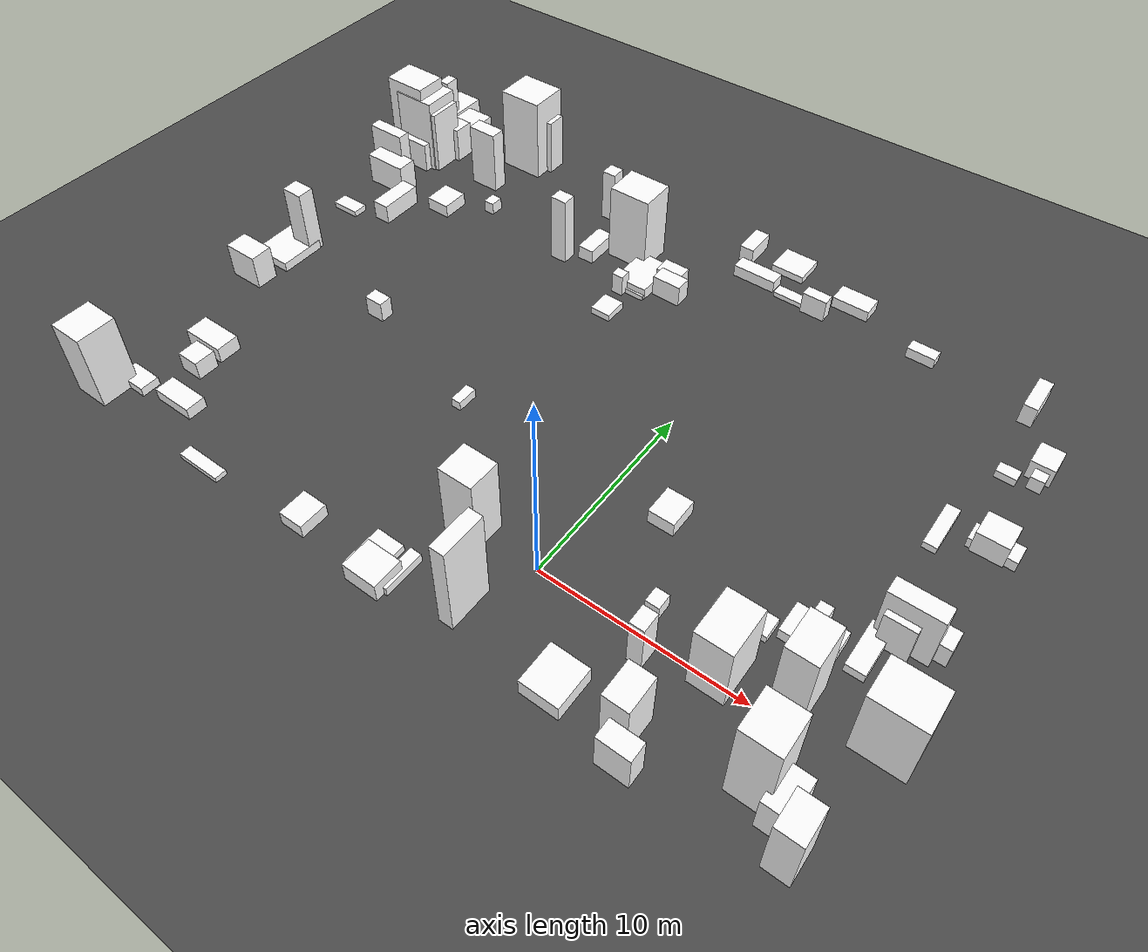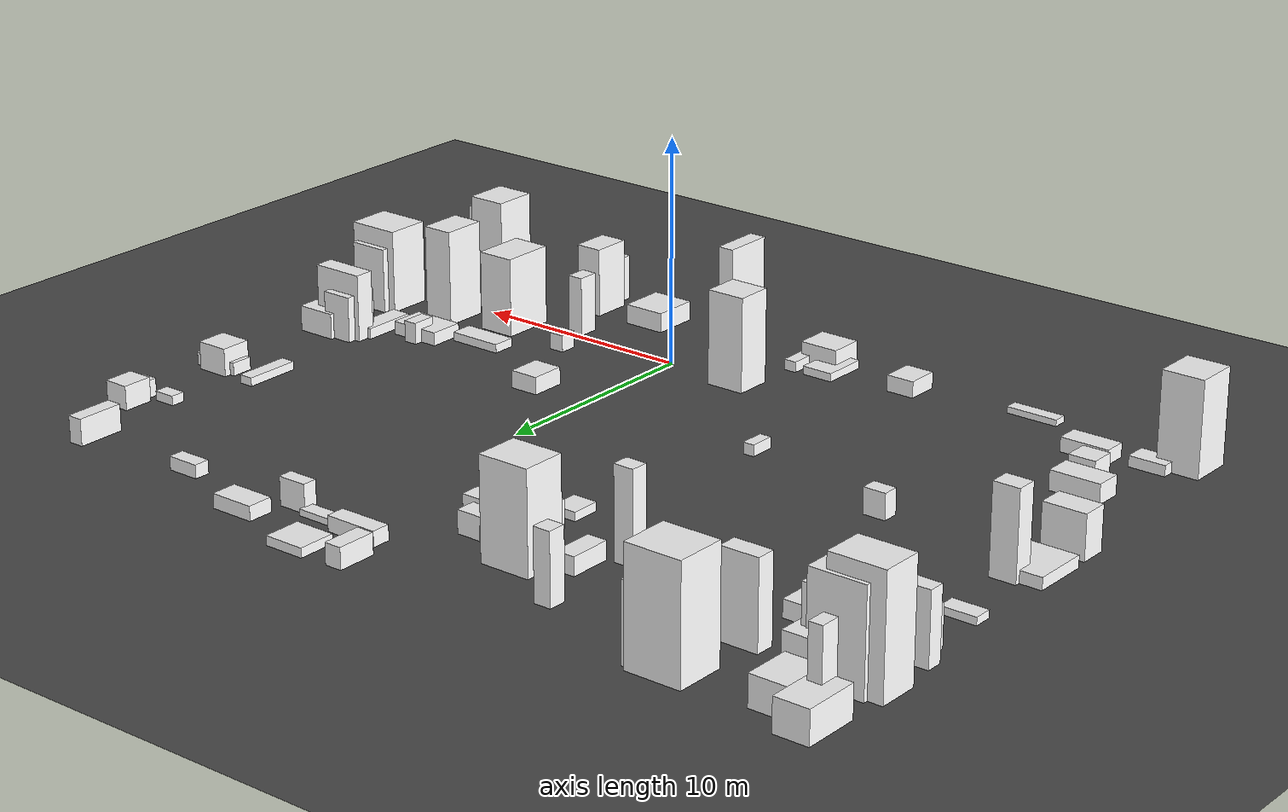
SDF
<sdf version="1.6">
 <world name="mirror_edge_world">
  <model name="ground_plane">
   <static>true</static>
   <link name="link">
    <collision name="collision">
     <geometry><plane><normal>0 0 1</normal><size>100 100</size></plane></geometry>
    </collision>
    <visual name="visual">
     <geometry><plane><normal>0 0 1</normal><size>100 100</size></plane></geometry>
     <material>
      <ambient>0.3 0.3 0.3 1</ambient>
      <diffuse>0.3 0.3 0.3 1</diffuse>
      <specular>0.5 0.5 0.5 1</specular>
      <emissive>0 0 0 1</emissive>
     </material>
    </visual>
   </link>
  </model>
  <model name="block_10_36">
   <static>true</static>
   <link name="link">
    <pose>13.14398396899653 5.932154925168475 1.022013443884161 0 0 0</pose>
    <visual name="visual">
     <geometry><box><size>1.4062274205631344 1.5603947967494347 2.044026887768322</size></box></geometry>
     <material>
      <ambient>1 1 1 1</ambient>
      <diffuse>1 1 1 1</diffuse>
      <specular>0.9 0.9 0.9 1</specular>
      <emissive>0.05 0.05 0.05 1</emissive>
     </material>
    </visual>
   </link>
  </model>
  <model name="block_10_39">
   <static>true</static>
   <link name="link">
    <pose>-23.719673926924457 21.985306734665333 1.770845181758036 0 0 0</pose>
    <visual name="visual">
     <geometry><box><size>0.5934019425355255 0.855660733695859 3.541690363516072</size></box></geometry>
     <material>
      <ambient>1 1 1 1</ambient>
      <diffuse>1 1 1 1</diffuse>
      <specular>0.9 0.9 0.9 1</specular>
      <emissive>0.05 0.05 0.05 1</emissive>
     </material>
    </visual>
   </link>
  </model>
  <model name="block_10_44">
   <static>true</static>
   <link name="link">
    <pose>7.360546333873977 -4.828575610701538 1.0065703546509264 0 0 0</pose>
    <visual name="visual">
     <geometry><box><size>1.5447068966338313 0.9139194485366942 2.0131407093018527</size></box></geometry>
     <material>
      <ambient>1 1 1 1</ambient>
      <diffuse>1 1 1 1</diffuse>
      <specular>0.9 0.9 0.9 1</specular>
      <emissive>0.05 0.05 0.05 1</emissive>
     </material>
    </visual>
   </link>
  </model>
  <model name="block_10_45">
   <static>true</static>
   <link name="link">
    <pose>-15.839575758059079 7.353125209314778 0.5637914186778874 0 0 0</pose>
    <collision name="collision">
     <geometry><box><size>1.017265040462063 0.7210265243921623 1.1275828373557748</size></box></geometry>
    </collision>
    <visual name="visual">
     <geometry><box><size>1.017265040462063 0.7210265243921623 1.1275828373557748</size></box></geometry>
     <material>
      <ambient>1 1 1 1</ambient>
      <diffuse>1 1 1 1</diffuse>
      <specular>0.9 0.9 0.9 1</specular>
      <emissive>0.05 0.05 0.05 1</emissive>
     </material>
    </visual>
   </link>
  </model>
  <model name="block_10_46">
   <static>true</static>
   <link name="link">
    <pose>10.48898502338087 3.9034998790266533 0.2940860554523627 0 0 0</pose>
    <collision name="collision">
     <geometry><box><size>2.323407507187122 1.5603860755770764 0.5881721109047254</size></box></geometry>
    </collision>
    <visual name="visual">
     <geometry><box><size>2.323407507187122 1.5603860755770764 0.5881721109047254</size></box></geometry>
     <material>
      <ambient>1 1 1 1</ambient>
      <diffuse>1 1 1 1</diffuse>
      <specular>0.9 0.9 0.9 1</specular>
      <emissive>0.05 0.05 0.05 1</emissive>
     </material>
    </visual>
   </link>
  </model>
  <model name="block_10_47">
   <static>true</static>
   <link name="link">
    <pose>-5.72112464324708 -3.6082091533548692 0.18246351834590763 0 0 0</pose>
    <collision name="collision">
     <geometry><box><size>1.4403357732990603 2.0277170170143766 0.36492703669181525</size></box></geometry>
    </collision>
    <visual name="visual">
     <geometry><box><size>1.4403357732990603 2.0277170170143766 0.36492703669181525</size></box></geometry>
     <material>
      <ambient>1 1 1 1</ambient>
      <diffuse>1 1 1 1</diffuse>
      <specular>0.9 0.9 0.9 1</specular>
      <emissive>0.05 0.05 0.05 1</emissive>
     </material>
    </visual>
   </link>
  </model>
  <model name="block_10_48">
   <static>true</static>
   <link name="link">
    <pose>0.2810482344472227 20.862907026773684 0.13949705946904145 0 0 0</pose>
    <collision name="collision">
     <geometry><box><size>1.6884487499459087 0.6494085556909421 0.2789941189380829</size></box></geometry>
    </collision>
    <visual name="visual">
     <geometry><box><size>1.6884487499459087 0.6494085556909421 0.2789941189380829</size></box></geometry>
     <material>
      <ambient>1 1 1 1</ambient>
      <diffuse>1 1 1 1</diffuse>
      <specular>0.9 0.9 0.9 1</specular>
      <emissive>0.05 0.05 0.05 1</emissive>
     </material>
    </visual>
   </link>
  </model>
  <model name="block_10_52">
   <static>true</static>
   <link name="link">
    <pose>3.1643194363562124 22.18768458143067 0.3115563000027671 0 0 0</pose>
    <collision name="collision">
     <geometry><box><size>1.9522807097277013 1.1299898943811022 0.6231126000055341</size></box></geometry>
    </collision>
    <visual name="visual">
     <geometry><box><size>1.9522807097277013 1.1299898943811022 0.6231126000055341</size></box></geometry>
     <material>
      <ambient>1 1 1 1</ambient>
      <diffuse>1 1 1 1</diffuse>
      <specular>0.9 0.9 0.9 1</specular>
      <emissive>0.05 0.05 0.05 1</emissive>
     </material>
    </visual>
   </link>
  </model>
  <model name="block_10_53">
   <static>true</static>
   <link name="link">
    <pose>14.690262102213012 1.7146418022751693 1.8657009960301596 0 0 0</pose>
    <visual name="visual">
     <geometry><box><size>2.363625511586188 1.9873620562468064 3.731401992060319</size></box></geometry>
     <material>
      <ambient>1 1 1 1</ambient>
      <diffuse>1 1 1 1</diffuse>
      <specular>0.9 0.9 0.9 1</specular>
      <emissive>0.05 0.05 0.05 1</emissive>
     </material>
    </visual>
   </link>
  </model>
  <model name="block_10_56">
   <static>true</static>
   <link name="link">
    <pose>-11.14343626819747 21.043633217978954 1.5038853410179565 0 0 0</pose>
    <visual name="visual">
     <geometry><box><size>0.7641052566713302 0.7913520050208096 3.007770682035913</size></box></geometry>
     <material>
      <ambient>1 1 1 1</ambient>
      <diffuse>1 1 1 1</diffuse>
      <specular>0.9 0.9 0.9 1</specular>
      <emissive>0.05 0.05 0.05 1</emissive>
     </material>
    </visual>
   </link>
  </model>
  <model name="block_10_59">
   <static>true</static>
   <link name="link">
    <pose>10.390578861977815 4.495327098001437 0.47488278004322965 0 0 0</pose>
    <collision name="collision">
     <geometry><box><size>0.6082894664843825 1.1199350834160051 0.9497655600864593</size></box></geometry>
    </collision>
    <visual name="visual">
     <geometry><box><size>0.6082894664843825 1.1199350834160051 0.9497655600864593</size></box></geometry>
     <material>
      <ambient>1 1 1 1</ambient>
      <diffuse>1 1 1 1</diffuse>
      <specular>0.9 0.9 0.9 1</specular>
      <emissive>0.05 0.05 0.05 1</emissive>
     </material>
    </visual>
   </link>
  </model>
  <model name="block_10_60">
   <static>true</static>
   <link name="link">
    <pose>11.168878389780367 1.3717405584177191 2.137899018583286 0 0 0</pose>
    <visual name="visual">
     <geometry><box><size>1.3998180333235046 1.9829453416426635 4.275798037166572</size></box></geometry>
     <material>
      <ambient>1 1 1 1</ambient>
      <diffuse>1 1 1 1</diffuse>
      <specular>0.9 0.9 0.9 1</specular>
      <emissive>0.05 0.05 0.05 1</emissive>
     </material>
    </visual>
   </link>
  </model>
  <model name="block_10_62">
   <static>true</static>
   <link name="link">
    <pose>-23.130551316403892 18.96393941651243 0.8671967395397819 0 0 0</pose>
    <visual name="visual">
     <geometry><box><size>1.9477650666660105 2.0626600229176226 1.7343934790795639</size></box></geometry>
     <material>
      <ambient>1 1 1 1</ambient>
      <diffuse>1 1 1 1</diffuse>
      <specular>0.9 0.9 0.9 1</specular>
      <emissive>0.05 0.05 0.05 1</emissive>
     </material>
    </visual>
   </link>
  </model>
  <model name="block_10_64">
   <static>true</static>
   <link name="link">
    <pose>3.690911395373785 -3.7301240194693586 0.43594860938139485 0 0 0</pose>
    <collision name="collision">
     <geometry><box><size>1.8978971156321893 2.0483993641014586 0.8718972187627897</size></box></geometry>
    </collision>
    <visual name="visual">
     <geometry><box><size>1.8978971156321893 2.0483993641014586 0.8718972187627897</size></box></geometry>
     <material>
      <ambient>1 1 1 1</ambient>
      <diffuse>1 1 1 1</diffuse>
      <specular>0.9 0.9 0.9 1</specular>
      <emissive>0.05 0.05 0.05 1</emissive>
     </material>
    </visual>
   </link>
  </model>
  <model name="block_10_67">
   <static>true</static>
   <link name="link">
    <pose>-20.722909921975457 0.7607966268274522 0.4299927545267635 0 0 0</pose>
    <collision name="collision">
     <geometry><box><size>2.2739997098499964 1.2126106399910992 0.859985509053527</size></box></geometry>
    </collision>
    <visual name="visual">
     <geometry><box><size>2.2739997098499964 1.2126106399910992 0.859985509053527</size></box></geometry>
     <material>
      <ambient>1 1 1 1</ambient>
      <diffuse>1 1 1 1</diffuse>
      <specular>0.9 0.9 0.9 1</specular>
      <emissive>0.05 0.05 0.05 1</emissive>
     </material>
    </visual>
   </link>
  </model>
  <model name="block_11_0">
   <static>true</static>
   <link name="link">
    <pose>-22.88524268246519 15.932406507634877 0.895745612841071 0 0 0</pose>
    <visual name="visual">
     <geometry><box><size>2.403761875140228 1.1200065324880848 1.791491225682142</size></box></geometry>
     <material>
      <ambient>1 1 1 1</ambient>
      <diffuse>1 1 1 1</diffuse>
      <specular>0.9 0.9 0.9 1</specular>
      <emissive>0.05 0.05 0.05 1</emissive>
     </material>
    </visual>
   </link>
  </model>
  <model name="block_11_2">
   <static>true</static>
   <link name="link">
    <pose>-7.141831109437067 16.117844287125045 0.6060853999581335 0 0 0</pose>
    <visual name="visual">
     <geometry><box><size>0.6206438179427527 0.5793317187404519 1.212170799916267</size></box></geometry>
     <material>
      <ambient>1 1 1 1</ambient>
      <diffuse>1 1 1 1</diffuse>
      <specular>0.9 0.9 0.9 1</specular>
      <emissive>0.05 0.05 0.05 1</emissive>
     </material>
    </visual>
   </link>
  </model>
  <model name="block_11_3">
   <static>true</static>
   <link name="link">
    <pose>14.426582454925885 12.21971588629421 0.6189555330078333 0 0 0</pose>
    <collision name="collision">
     <geometry><box><size>1.4656414743136656 1.3748484489824404 1.2379110660156667</size></box></geometry>
    </collision>
    <visual name="visual">
     <geometry><box><size>1.4656414743136656 1.3748484489824404 1.2379110660156667</size></box></geometry>
     <material>
      <ambient>1 1 1 1</ambient>
      <diffuse>1 1 1 1</diffuse>
      <specular>0.9 0.9 0.9 1</specular>
      <emissive>0.05 0.05 0.05 1</emissive>
     </material>
    </visual>
   </link>
  </model>
  <model name="block_11_4">
   <static>true</static>
   <link name="link">
    <pose>-6.64063393572258 17.485346357170314 0.3231620537967594 0 0 0</pose>
    <collision name="collision">
     <geometry><box><size>1.8104963373769178 2.428725796269382 0.6463241075935188</size></box></geometry>
    </collision>
    <visual name="visual">
     <geometry><box><size>1.8104963373769178 2.428725796269382 0.6463241075935188</size></box></geometry>
     <material>
      <ambient>1 1 1 1</ambient>
      <diffuse>1 1 1 1</diffuse>
      <specular>0.9 0.9 0.9 1</specular>
      <emissive>0.05 0.05 0.05 1</emissive>
     </material>
    </visual>
   </link>
  </model>
  <model name="block_11_9">
   <static>true</static>
   <link name="link">
    <pose>-0.73911984909628 23.072457922440748 0.20239345267973735 0 0 0</pose>
    <collision name="collision">
     <geometry><box><size>1.79166487440829 1.643205542984609 0.4047869053594747</size></box></geometry>
    </collision>
    <visual name="visual">
     <geometry><box><size>1.79166487440829 1.643205542984609 0.4047869053594747</size></box></geometry>
     <material>
      <ambient>1 1 1 1</ambient>
      <diffuse>1 1 1 1</diffuse>
      <specular>0.9 0.9 0.9 1</specular>
      <emissive>0.05 0.05 0.05 1</emissive>
     </material>
    </visual>
   </link>
  </model>
  <model name="block_11_13">
   <static>true</static>
   <link name="link">
    <pose>-20.13137412236901 -0.6475013786940114 0.5105938764906168 0 0 0</pose>
    <collision name="collision">
     <geometry><box><size>1.2166819569290062 1.1187875733813217 1.0211877529812337</size></box></geometry>
    </collision>
    <visual name="visual">
     <geometry><box><size>1.2166819569290062 1.1187875733813217 1.0211877529812337</size></box></geometry>
     <material>
      <ambient>1 1 1 1</ambient>
      <diffuse>1 1 1 1</diffuse>
      <specular>0.9 0.9 0.9 1</specular>
      <emissive>0.05 0.05 0.05 1</emissive>
     </material>
    </visual>
   </link>
  </model>
  <model name="block_11_14">
   <static>true</static>
   <link name="link">
    <pose>-23.96427520771062 22.806162378564505 0.6937701049093288 0 0 0</pose>
    <visual name="visual">
     <geometry><box><size>1.514727674243278 2.4354961125367645 1.3875402098186576</size></box></geometry>
     <material>
      <ambient>1 1 1 1</ambient>
      <diffuse>1 1 1 1</diffuse>
      <specular>0.9 0.9 0.9 1</specular>
      <emissive>0.05 0.05 0.05 1</emissive>
     </material>
    </visual>
   </link>
  </model>
  <model name="block_11_17">
   <static>true</static>
   <link name="link">
    <pose>-22.666091150015724 -4.0511061864706805 2.0823466095999565 0 0 0</pose>
    <visual name="visual">
     <geometry><box><size>1.8722027414350537 1.9752301778030144 4.164693219199913</size></box></geometry>
     <material>
      <ambient>1 1 1 1</ambient>
      <diffuse>1 1 1 1</diffuse>
      <specular>0.9 0.9 0.9 1</specular>
      <emissive>0.05 0.05 0.05 1</emissive>
     </material>
    </visual>
   </link>
  </model>
  <model name="block_11_19">
   <static>true</static>
   <link name="link">
    <pose>-8.185757298008028 19.139252008429082 2.1701992765522666 0 0 0</pose>
    <visual name="visual">
     <geometry><box><size>2.27429194293656 1.9155800381555814 4.340398553104533</size></box></geometry>
     <material>
      <ambient>1 1 1 1</ambient>
      <diffuse>1 1 1 1</diffuse>
      <specular>0.9 0.9 0.9 1</specular>
      <emissive>0.05 0.05 0.05 1</emissive>
     </material>
    </visual>
   </link>
  </model>
  <model name="block_11_22">
   <static>true</static>
   <link name="link">
    <pose>12.475341262061825 4.601288098594913 0.2384032103170613 0 0 0</pose>
    <collision name="collision">
     <geometry><box><size>0.8880955289223214 2.4301790528074303 0.4768064206341226</size></box></geometry>
    </collision>
    <visual name="visual">
     <geometry><box><size>0.8880955289223214 2.4301790528074303 0.4768064206341226</size></box></geometry>
     <material>
      <ambient>1 1 1 1</ambient>
      <diffuse>1 1 1 1</diffuse>
      <specular>0.9 0.9 0.9 1</specular>
      <emissive>0.05 0.05 0.05 1</emissive>
     </material>
    </visual>
   </link>
  </model>
  <model name="block_11_23">
   <static>true</static>
   <link name="link">
    <pose>14.658263200183804 17.423861104060325 0.5300622002242055 0 0 0</pose>
    <collision name="collision">
     <geometry><box><size>1.121836637344087 1.339192898808405 1.060124400448411</size></box></geometry>
    </collision>
    <visual name="visual">
     <geometry><box><size>1.121836637344087 1.339192898808405 1.060124400448411</size></box></geometry>
     <material>
      <ambient>1 1 1 1</ambient>
      <diffuse>1 1 1 1</diffuse>
      <specular>0.9 0.9 0.9 1</specular>
      <emissive>0.05 0.05 0.05 1</emissive>
     </material>
    </visual>
   </link>
  </model>
  <model name="block_11_25">
   <static>true</static>
   <link name="link">
    <pose>4.877644653521944 1.4041627576769953 0.37300122545366876 0 0 0</pose>
    <collision name="collision">
     <geometry><box><size>0.6738179490028751 0.7902784643743668 0.7460024509073375</size></box></geometry>
    </collision>
    <visual name="visual">
     <geometry><box><size>0.6738179490028751 0.7902784643743668 0.7460024509073375</size></box></geometry>
     <material>
      <ambient>1 1 1 1</ambient>
      <diffuse>1 1 1 1</diffuse>
      <specular>0.9 0.9 0.9 1</specular>
      <emissive>0.05 0.05 0.05 1</emissive>
     </material>
    </visual>
   </link>
  </model>
  <model name="block_11_27">
   <static>true</static>
   <link name="link">
    <pose>-21.603167708245632 -3.051509174233982 0.23822872738962375 0 0 0</pose>
    <collision name="collision">
     <geometry><box><size>1.6390352961548613 0.985571215870674 0.4764574547792475</size></box></geometry>
    </collision>
    <visual name="visual">
     <geometry><box><size>1.6390352961548613 0.985571215870674 0.4764574547792475</size></box></geometry>
     <material>
      <ambient>1 1 1 1</ambient>
      <diffuse>1 1 1 1</diffuse>
      <specular>0.9 0.9 0.9 1</specular>
      <emissive>0.05 0.05 0.05 1</emissive>
     </material>
    </visual>
   </link>
  </model>
  <model name="block_11_30">
   <static>true</static>
   <link name="link">
    <pose>14.731894822202293 2.303005918449771 1.4588367961730682 0 0 0</pose>
    <visual name="visual">
     <geometry><box><size>1.7769494114376576 1.396564480820891 2.9176735923461363</size></box></geometry>
     <material>
      <ambient>1 1 1 1</ambient>
      <diffuse>1 1 1 1</diffuse>
      <specular>0.9 0.9 0.9 1</specular>
      <emissive>0.05 0.05 0.05 1</emissive>
     </material>
    </visual>
   </link>
  </model>
  <model name="block_11_33">
   <static>true</static>
   <link name="link">
    <pose>-23.54383104812269 16.696705798025278 1.5132464822302278 0 0 0</pose>
    <visual name="visual">
     <geometry><box><size>2.182977431988924 0.6978457244431107 3.0264929644604557</size></box></geometry>
     <material>
      <ambient>1 1 1 1</ambient>
      <diffuse>1 1 1 1</diffuse>
      <specular>0.9 0.9 0.9 1</specular>
      <emissive>0.05 0.05 0.05 1</emissive>
     </material>
    </visual>
   </link>
  </model>
  <model name="block_11_38">
   <static>true</static>
   <link name="link">
    <pose>-23.08926548702857 19.354109070942947 2.1664165106262963 0 0 0</pose>
    <visual name="visual">
     <geometry><box><size>2.4252941860799098 2.036594770720454 4.3328330212525925</size></box></geometry>
     <material>
      <ambient>1 1 1 1</ambient>
      <diffuse>1 1 1 1</diffuse>
      <specular>0.9 0.9 0.9 1</specular>
      <emissive>0.05 0.05 0.05 1</emissive>
     </material>
    </visual>
   </link>
  </model>
  <model name="block_11_41">
   <static>true</static>
   <link name="link">
    <pose>-22.134422205460524 19.35649535047142 1.836431570803652 0 0 0</pose>
    <visual name="visual">
     <geometry><box><size>1.0229245878920994 1.900424543935949 3.672863141607304</size></box></geometry>
     <material>
      <ambient>1 1 1 1</ambient>
      <diffuse>1 1 1 1</diffuse>
      <specular>0.9 0.9 0.9 1</specular>
      <emissive>0.05 0.05 0.05 1</emissive>
     </material>
    </visual>
   </link>
  </model>
  <model name="block_11_44">
   <static>true</static>
   <link name="link">
    <pose>13.508310498981366 16.22738005906973 0.20850270008440303 0 0 0</pose>
    <collision name="collision">
     <geometry><box><size>0.9655844731512682 0.6307362469491182 0.41700540016880605</size></box></geometry>
    </collision>
    <visual name="visual">
     <geometry><box><size>0.9655844731512682 0.6307362469491182 0.41700540016880605</size></box></geometry>
     <material>
      <ambient>1 1 1 1</ambient>
      <diffuse>1 1 1 1</diffuse>
      <specular>0.9 0.9 0.9 1</specular>
      <emissive>0.05 0.05 0.05 1</emissive>
     </material>
    </visual>
   </link>
  </model>
  <model name="block_11_46">
   <static>true</static>
   <link name="link">
    <pose>-6.489548633455442 17.08269936182798 0.13720731698665073 0 0 0</pose>
    <collision name="collision">
     <geometry><box><size>1.39521695156091 1.8814704069005284 0.27441463397330146</size></box></geometry>
    </collision>
    <visual name="visual">
     <geometry><box><size>1.39521695156091 1.8814704069005284 0.27441463397330146</size></box></geometry>
     <material>
      <ambient>1 1 1 1</ambient>
      <diffuse>1 1 1 1</diffuse>
      <specular>0.9 0.9 0.9 1</specular>
      <emissive>0.05 0.05 0.05 1</emissive>
     </material>
    </visual>
   </link>
  </model>
  <model name="block_11_47">
   <static>true</static>
   <link name="link">
    <pose>7.902257804576092 3.1589569032782263 0.19383607003008596 0 0 0</pose>
    <collision name="collision">
     <geometry><box><size>2.448371442313409 1.0382628543442094 0.3876721400601719</size></box></geometry>
    </collision>
    <visual name="visual">
     <geometry><box><size>2.448371442313409 1.0382628543442094 0.3876721400601719</size></box></geometry>
     <material>
      <ambient>1 1 1 1</ambient>
      <diffuse>1 1 1 1</diffuse>
      <specular>0.9 0.9 0.9 1</specular>
      <emissive>0.05 0.05 0.05 1</emissive>
     </material>
    </visual>
   </link>
  </model>
  <model name="block_11_48">
   <static>true</static>
   <link name="link">
    <pose>-5.294820061120976 18.183737514682807 0.49411337037019637 0 0 0</pose>
    <collision name="collision">
     <geometry><box><size>1.3325880567881294 0.9717154019499692 0.9882267407403927</size></box></geometry>
    </collision>
    <visual name="visual">
     <geometry><box><size>1.3325880567881294 0.9717154019499692 0.9882267407403927</size></box></geometry>
     <material>
      <ambient>1 1 1 1</ambient>
      <diffuse>1 1 1 1</diffuse>
      <specular>0.9 0.9 0.9 1</specular>
      <emissive>0.05 0.05 0.05 1</emissive>
     </material>
    </visual>
   </link>
  </model>
  <model name="block_11_49">
   <static>true</static>
   <link name="link">
    <pose>-4.358609397390822 -3.589603649538404 0.23353823405959245 0 0 0</pose>
    <collision name="collision">
     <geometry><box><size>0.5732034479825519 2.1038873562565668 0.4670764681191849</size></box></geometry>
    </collision>
    <visual name="visual">
     <geometry><box><size>0.5732034479825519 2.1038873562565668 0.4670764681191849</size></box></geometry>
     <material>
      <ambient>1 1 1 1</ambient>
      <diffuse>1 1 1 1</diffuse>
      <specular>0.9 0.9 0.9 1</specular>
      <emissive>0.05 0.05 0.05 1</emissive>
     </material>
    </visual>
   </link>
  </model>
  <model name="block_11_50">
   <static>true</static>
   <link name="link">
    <pose>14.239186526412972 6.37612262854022 0.5702077448445912 0 0 0</pose>
    <collision name="collision">
     <geometry><box><size>1.7892691731105912 1.0301128810286582 1.1404154896891825</size></box></geometry>
    </collision>
    <visual name="visual">
     <geometry><box><size>1.7892691731105912 1.0301128810286582 1.1404154896891825</size></box></geometry>
     <material>
      <ambient>1 1 1 1</ambient>
      <diffuse>1 1 1 1</diffuse>
      <specular>0.9 0.9 0.9 1</specular>
      <emissive>0.05 0.05 0.05 1</emissive>
     </material>
    </visual>
   </link>
  </model>
  <model name="block_11_51">
   <static>true</static>
   <link name="link">
    <pose>-23.21556603035931 12.704552088255664 0.16687852035683381 0 0 0</pose>
    <collision name="collision">
     <geometry><box><size>1.5602519765836145 0.8042015313872881 0.33375704071366763</size></box></geometry>
    </collision>
    <visual name="visual">
     <geometry><box><size>1.5602519765836145 0.8042015313872881 0.33375704071366763</size></box></geometry>
     <material>
      <ambient>1 1 1 1</ambient>
      <diffuse>1 1 1 1</diffuse>
      <specular>0.9 0.9 0.9 1</specular>
      <emissive>0.05 0.05 0.05 1</emissive>
     </material>
    </visual>
   </link>
  </model>
  <model name="block_11_56">
   <static>true</static>
   <link name="link">
    <pose>-1.3231170514820114 -3.085655207010039 2.479503654834387 0 0 0</pose>
    <visual name="visual">
     <geometry><box><size>0.7241367336137603 2.243104825586128 4.959007309668774</size></box></geometry>
     <material>
      <ambient>1 1 1 1</ambient>
      <diffuse>1 1 1 1</diffuse>
      <specular>0.9 0.9 0.9 1</specular>
      <emissive>0.05 0.05 0.05 1</emissive>
     </material>
    </visual>
   </link>
  </model>
  <model name="block_11_57">
   <static>true</static>
   <link name="link">
    <pose>-3.44936612478482 -0.0188264304780823 2.091180691952593 0 0 0</pose>
    <visual name="visual">
     <geometry><box><size>1.7442946952088474 1.6496933931218067 4.182361383905186</size></box></geometry>
     <material>
      <ambient>1 1 1 1</ambient>
      <diffuse>1 1 1 1</diffuse>
      <specular>0.9 0.9 0.9 1</specular>
      <emissive>0.05 0.05 0.05 1</emissive>
     </material>
    </visual>
   </link>
  </model>
  <model name="block_11_59">
   <static>true</static>
   <link name="link">
    <pose>12.848022647858407 -2.8647549276055893 0.9703083221773829 0 0 0</pose>
    <visual name="visual">
     <geometry><box><size>1.2002439417478414 1.8361789149943173 1.9406166443547659</size></box></geometry>
     <material>
      <ambient>1 1 1 1</ambient>
      <diffuse>1 1 1 1</diffuse>
      <specular>0.9 0.9 0.9 1</specular>
      <emissive>0.05 0.05 0.05 1</emissive>
     </material>
    </visual>
   </link>
  </model>
  <model name="block_11_60">
   <static>true</static>
   <link name="link">
    <pose>14.556641982788946 12.126378412668117 0.28480849390018886 0 0 0</pose>
    <collision name="collision">
     <geometry><box><size>2.159238114983294 0.9792030921480808 0.5696169878003777</size></box></geometry>
    </collision>
    <visual name="visual">
     <geometry><box><size>2.159238114983294 0.9792030921480808 0.5696169878003777</size></box></geometry>
     <material>
      <ambient>1 1 1 1</ambient>
      <diffuse>1 1 1 1</diffuse>
      <specular>0.9 0.9 0.9 1</specular>
      <emissive>0.05 0.05 0.05 1</emissive>
     </material>
    </visual>
   </link>
  </model>
  <model name="block_11_61">
   <static>true</static>
   <link name="link">
    <pose>-23.23926830315827 18.940315072578276 0.9491579192005195 0 0 0</pose>
    <visual name="visual">
     <geometry><box><size>0.6600693032135252 0.6656675419594849 1.898315838401039</size></box></geometry>
     <material>
      <ambient>1 1 1 1</ambient>
      <diffuse>1 1 1 1</diffuse>
      <specular>0.9 0.9 0.9 1</specular>
      <emissive>0.05 0.05 0.05 1</emissive>
     </material>
    </visual>
   </link>
  </model>
  <model name="block_11_67">
   <static>true</static>
   <link name="link">
    <pose>-16.941147871422157 22.763019557438135 1.635095927948267 0 0 0</pose>
    <visual name="visual">
     <geometry><box><size>1.3201072010340167 1.0805460718936393 3.270191855896534</size></box></geometry>
     <material>
      <ambient>1 1 1 1</ambient>
      <diffuse>1 1 1 1</diffuse>
      <specular>0.9 0.9 0.9 1</specular>
      <emissive>0.05 0.05 0.05 1</emissive>
     </material>
    </visual>
   </link>
  </model>
  <model name="block_12_2">
   <static>true</static>
   <link name="link">
    <pose>-6.785640454890078 14.465373223440547 0.1956483328937132 0 0 0</pose>
    <collision name="collision">
     <geometry><box><size>1.0939652862319087 1.255961734825119 0.3912966657874264</size></box></geometry>
    </collision>
    <visual name="visual">
     <geometry><box><size>1.0939652862319087 1.255961734825119 0.3912966657874264</size></box></geometry>
     <material>
      <ambient>1 1 1 1</ambient>
      <diffuse>1 1 1 1</diffuse>
      <specular>0.9 0.9 0.9 1</specular>
      <emissive>0.05 0.05 0.05 1</emissive>
     </material>
    </visual>
   </link>
  </model>
  <model name="block_12_4">
   <static>true</static>
   <link name="link">
    <pose>-16.73870093632295 17.45992179880123 0.3451156235245346 0 0 0</pose>
    <collision name="collision">
     <geometry><box><size>0.5905843772608965 0.703885868639978 0.6902312470490692</size></box></geometry>
    </collision>
    <visual name="visual">
     <geometry><box><size>0.5905843772608965 0.703885868639978 0.6902312470490692</size></box></geometry>
     <material>
      <ambient>1 1 1 1</ambient>
      <diffuse>1 1 1 1</diffuse>
      <specular>0.9 0.9 0.9 1</specular>
      <emissive>0.05 0.05 0.05 1</emissive>
     </material>
    </visual>
   </link>
  </model>
  <model name="block_12_7">
   <static>true</static>
   <link name="link">
    <pose>14.718911534042384 16.71457262029195 0.38057702414226896 0 0 0</pose>
    <collision name="collision">
     <geometry><box><size>0.6451803685658148 1.1166020638786258 0.7611540482845379</size></box></geometry>
    </collision>
    <visual name="visual">
     <geometry><box><size>0.6451803685658148 1.1166020638786258 0.7611540482845379</size></box></geometry>
     <material>
      <ambient>1 1 1 1</ambient>
      <diffuse>1 1 1 1</diffuse>
      <specular>0.9 0.9 0.9 1</specular>
      <emissive>0.05 0.05 0.05 1</emissive>
     </material>
    </visual>
   </link>
  </model>
  <model name="block_12_12">
   <static>true</static>
   <link name="link">
    <pose>-8.522265221409294 5.307035293339589 0.2492417485561701 0 0 0</pose>
    <collision name="collision">
     <geometry><box><size>0.5175760122162731 1.1026015877520146 0.4984834971123402</size></box></geometry>
    </collision>
    <visual name="visual">
     <geometry><box><size>0.5175760122162731 1.1026015877520146 0.4984834971123402</size></box></geometry>
     <material>
      <ambient>1 1 1 1</ambient>
      <diffuse>1 1 1 1</diffuse>
      <specular>0.9 0.9 0.9 1</specular>
      <emissive>0.05 0.05 0.05 1</emissive>
     </material>
    </visual>
   </link>
  </model>
  <model name="block_12_13">
   <static>true</static>
   <link name="link">
    <pose>-17.796304714722098 22.441356144325027 2.4057661551646254 0 0 0</pose>
    <visual name="visual">
     <geometry><box><size>2.463802354964498 2.1714828183406154 4.811532310329251</size></box></geometry>
     <material>
      <ambient>1 1 1 1</ambient>
      <diffuse>1 1 1 1</diffuse>
      <specular>0.9 0.9 0.9 1</specular>
      <emissive>0.05 0.05 0.05 1</emissive>
     </material>
    </visual>
   </link>
  </model>
  <model name="block_12_15">
   <static>true</static>
   <link name="link">
    <pose>13.69936316000804 -4.020067729006074 1.646823071887743 0 0 0</pose>
    <visual name="visual">
     <geometry><box><size>1.1659492938746456 1.6415476835354692 3.293646143775486</size></box></geometry>
     <material>
      <ambient>1 1 1 1</ambient>
      <diffuse>1 1 1 1</diffuse>
      <specular>0.9 0.9 0.9 1</specular>
      <emissive>0.05 0.05 0.05 1</emissive>
     </material>
    </visual>
   </link>
  </model>
  <model name="block_12_24">
   <static>true</static>
   <link name="link">
    <pose>-9.492633538292598 -3.950282101216307 0.3617559780393137 0 0 0</pose>
    <collision name="collision">
     <geometry><box><size>1.2891153301655254 1.4593457326800519 0.7235119560786274</size></box></geometry>
    </collision>
    <visual name="visual">
     <geometry><box><size>1.2891153301655254 1.4593457326800519 0.7235119560786274</size></box></geometry>
     <material>
      <ambient>1 1 1 1</ambient>
      <diffuse>1 1 1 1</diffuse>
      <specular>0.9 0.9 0.9 1</specular>
      <emissive>0.05 0.05 0.05 1</emissive>
     </material>
    </visual>
   </link>
  </model>
  <model name="block_12_26">
   <static>true</static>
   <link name="link">
    <pose>12.98610027050912 20.741489018411166 0.5795704846359343 0 0 0</pose>
    <collision name="collision">
     <geometry><box><size>0.6745315845256041 2.098544615545205 1.1591409692718686</size></box></geometry>
    </collision>
    <visual name="visual">
     <geometry><box><size>0.6745315845256041 2.098544615545205 1.1591409692718686</size></box></geometry>
     <material>
      <ambient>1 1 1 1</ambient>
      <diffuse>1 1 1 1</diffuse>
      <specular>0.9 0.9 0.9 1</specular>
      <emissive>0.05 0.05 0.05 1</emissive>
     </material>
    </visual>
   </link>
  </model>
  <model name="block_12_27">
   <static>true</static>
   <link name="link">
    <pose>-9.995745516662446 17.92087277389219 0.3961539183877817 0 0 0</pose>
    <collision name="collision">
     <geometry><box><size>0.887068157393442 1.8594253615209628 0.7923078367755634</size></box></geometry>
    </collision>
    <visual name="visual">
     <geometry><box><size>0.887068157393442 1.8594253615209628 0.7923078367755634</size></box></geometry>
     <material>
      <ambient>1 1 1 1</ambient>
      <diffuse>1 1 1 1</diffuse>
      <specular>0.9 0.9 0.9 1</specular>
      <emissive>0.05 0.05 0.05 1</emissive>
     </material>
    </visual>
   </link>
  </model>
  <model name="block_12_28">
   <static>true</static>
   <link name="link">
    <pose>2.8598247388796345 5.486729575407584 0.38495539950648683 0 0 0</pose>
    <collision name="collision">
     <geometry><box><size>1.3045147380543454 1.547627153284238 0.7699107990129737</size></box></geometry>
    </collision>
    <visual name="visual">
     <geometry><box><size>1.3045147380543454 1.547627153284238 0.7699107990129737</size></box></geometry>
     <material>
      <ambient>1 1 1 1</ambient>
      <diffuse>1 1 1 1</diffuse>
      <specular>0.9 0.9 0.9 1</specular>
      <emissive>0.05 0.05 0.05 1</emissive>
     </material>
    </visual>
   </link>
  </model>
  <model name="block_12_37">
   <static>true</static>
   <link name="link">
    <pose>-11.20906511263454 16.582376772398383 1.9582702878355727 0 0 0</pose>
    <visual name="visual">
     <geometry><box><size>0.9035594601245509 0.7557321209991261 3.9165405756711453</size></box></geometry>
     <material>
      <ambient>1 1 1 1</ambient>
      <diffuse>1 1 1 1</diffuse>
      <specular>0.9 0.9 0.9 1</specular>
      <emissive>0.05 0.05 0.05 1</emissive>
     </material>
    </visual>
   </link>
  </model>
  <model name="block_12_38">
   <static>true</static>
   <link name="link">
    <pose>-22.682537964417296 8.984202138624436 1.8952229868813362 0 0 0</pose>
    <visual name="visual">
     <geometry><box><size>1.167199926094526 0.9076926092934254 3.7904459737626723</size></box></geometry>
     <material>
      <ambient>1 1 1 1</ambient>
      <diffuse>1 1 1 1</diffuse>
      <specular>0.9 0.9 0.9 1</specular>
      <emissive>0.05 0.05 0.05 1</emissive>
     </material>
    </visual>
   </link>
  </model>
  <model name="block_12_40">
   <static>true</static>
   <link name="link">
    <pose>-19.00004100227679 16.099884337490543 0.3733752613367117 0 0 0</pose>
    <collision name="collision">
     <geometry><box><size>1.352974516589402 1.49926133148462 0.7467505226734233</size></box></geometry>
    </collision>
    <visual name="visual">
     <geometry><box><size>1.352974516589402 1.49926133148462 0.7467505226734233</size></box></geometry>
     <material>
      <ambient>1 1 1 1</ambient>
      <diffuse>1 1 1 1</diffuse>
      <specular>0.9 0.9 0.9 1</specular>
      <emissive>0.05 0.05 0.05 1</emissive>
     </material>
    </visual>
   </link>
  </model>
  <model name="block_12_41">
   <static>true</static>
   <link name="link">
    <pose>-18.99081363269893 -2.69149041335014 0.31775285715905827 0 0 0</pose>
    <collision name="collision">
     <geometry><box><size>2.1974536078930678 1.0259346707485029 0.6355057143181165</size></box></geometry>
    </collision>
    <visual name="visual">
     <geometry><box><size>2.1974536078930678 1.0259346707485029 0.6355057143181165</size></box></geometry>
     <material>
      <ambient>1 1 1 1</ambient>
      <diffuse>1 1 1 1</diffuse>
      <specular>0.9 0.9 0.9 1</specular>
      <emissive>0.05 0.05 0.05 1</emissive>
     </material>
    </visual>
   </link>
  </model>
  <model name="block_12_42">
   <static>true</static>
   <link name="link">
    <pose>-5.1166256876237455 -4.29500206038158 0.5041498200142835 0 0 0</pose>
    <collision name="collision">
     <geometry><box><size>1.785569512467136 1.5438525727183579 1.008299640028567</size></box></geometry>
    </collision>
    <visual name="visual">
     <geometry><box><size>1.785569512467136 1.5438525727183579 1.008299640028567</size></box></geometry>
     <material>
      <ambient>1 1 1 1</ambient>
      <diffuse>1 1 1 1</diffuse>
      <specular>0.9 0.9 0.9 1</specular>
      <emissive>0.05 0.05 0.05 1</emissive>
     </material>
    </visual>
   </link>
  </model>
  <model name="block_12_44">
   <static>true</static>
   <link name="link">
    <pose>-23.732069703114625 19.286733021109015 2.4959952390111093 0 0 0</pose>
    <visual name="visual">
     <geometry><box><size>2.421925013937617 1.7919614338329652 4.991990478022219</size></box></geometry>
     <material>
      <ambient>1 1 1 1</ambient>
      <diffuse>1 1 1 1</diffuse>
      <specular>0.9 0.9 0.9 1</specular>
      <emissive>0.05 0.05 0.05 1</emissive>
     </material>
    </visual>
   </link>
  </model>
  <model name="block_12_45">
   <static>true</static>
   <link name="link">
    <pose>-22.255918440328752 20.42938086015579 1.022197033852433 0 0 0</pose>
    <visual name="visual">
     <geometry><box><size>1.8670285772204251 1.1340266291904073 2.044394067704866</size></box></geometry>
     <material>
      <ambient>1 1 1 1</ambient>
      <diffuse>1 1 1 1</diffuse>
      <specular>0.9 0.9 0.9 1</specular>
      <emissive>0.05 0.05 0.05 1</emissive>
     </material>
    </visual>
   </link>
  </model>
  <model name="block_12_46">
   <static>true</static>
   <link name="link">
    <pose>-15.208209440013622 -4.621631799153272 0.14027543050887176 0 0 0</pose>
    <collision name="collision">
     <geometry><box><size>2.350692261327549 0.607796374565337 0.2805508610177435</size></box></geometry>
    </collision>
    <visual name="visual">
     <geometry><box><size>2.350692261327549 0.607796374565337 0.2805508610177435</size></box></geometry>
     <material>
      <ambient>1 1 1 1</ambient>
      <diffuse>1 1 1 1</diffuse>
      <specular>0.9 0.9 0.9 1</specular>
      <emissive>0.05 0.05 0.05 1</emissive>
     </material>
    </visual>
   </link>
  </model>
  <model name="block_12_50">
   <static>true</static>
   <link name="link">
    <pose>6.750605631584332 -3.476044275013966 1.5382947233508903 0 0 0</pose>
    <visual name="visual">
     <geometry><box><size>1.2119416489366415 1.7258210996904566 3.0765894467017807</size></box></geometry>
     <material>
      <ambient>1 1 1 1</ambient>
      <diffuse>1 1 1 1</diffuse>
      <specular>0.9 0.9 0.9 1</specular>
      <emissive>0.05 0.05 0.05 1</emissive>
     </material>
    </visual>
   </link>
  </model>
  <model name="block_12_51">
   <static>true</static>
   <link name="link">
    <pose>8.3322931159081 0.592459238092494 1.7629259267281727 0 0 0</pose>
    <visual name="visual">
     <geometry><box><size>1.6894795114147494 2.3669267791641375 3.5258518534563454</size></box></geometry>
     <material>
      <ambient>1 1 1 1</ambient>
      <diffuse>1 1 1 1</diffuse>
      <specular>0.9 0.9 0.9 1</specular>
      <emissive>0.05 0.05 0.05 1</emissive>
     </material>
    </visual>
   </link>
  </model>
  <model name="block_12_52">
   <static>true</static>
   <link name="link">
    <pose>-1.8730456993517066 -2.596780604797327 0.2722918297359431 0 0 0</pose>
    <collision name="collision">
     <geometry><box><size>0.9353415437178418 0.8705289153759153 0.5445836594718863</size></box></geometry>
    </collision>
    <visual name="visual">
     <geometry><box><size>0.9353415437178418 0.8705289153759153 0.5445836594718863</size></box></geometry>
     <material>
      <ambient>1 1 1 1</ambient>
      <diffuse>1 1 1 1</diffuse>
      <specular>0.9 0.9 0.9 1</specular>
      <emissive>0.05 0.05 0.05 1</emissive>
     </material>
    </visual>
   </link>
  </model>
  <model name="block_12_55">
   <static>true</static>
   <link name="link">
    <pose>-23.146129398868922 7.986246514431756 0.26173175908896307 0 0 0</pose>
    <collision name="collision">
     <geometry><box><size>2.1894089594982846 2.4788485484835805 0.5234635181779261</size></box></geometry>
    </collision>
    <visual name="visual">
     <geometry><box><size>2.1894089594982846 2.4788485484835805 0.5234635181779261</size></box></geometry>
     <material>
      <ambient>1 1 1 1</ambient>
      <diffuse>1 1 1 1</diffuse>
      <specular>0.9 0.9 0.9 1</specular>
      <emissive>0.05 0.05 0.05 1</emissive>
     </material>
    </visual>
   </link>
  </model>
  <model name="block_12_57">
   <static>true</static>
   <link name="link">
    <pose>13.400642958671796 5.91051468717403 1.4995741621337775 0 0 0</pose>
    <visual name="visual">
     <geometry><box><size>2.394315139439656 0.8700550253828165 2.999148324267555</size></box></geometry>
     <material>
      <ambient>1 1 1 1</ambient>
      <diffuse>1 1 1 1</diffuse>
      <specular>0.9 0.9 0.9 1</specular>
      <emissive>0.05 0.05 0.05 1</emissive>
     </material>
    </visual>
   </link>
  </model>
  <model name="block_12_60">
   <static>true</static>
   <link name="link">
    <pose>-1.894826867859706 21.14806225719593 0.33011143585161473 0 0 0</pose>
    <collision name="collision">
     <geometry><box><size>2.3289378762837476 0.8213668883466889 0.6602228717032295</size></box></geometry>
    </collision>
    <visual name="visual">
     <geometry><box><size>2.3289378762837476 0.8213668883466889 0.6602228717032295</size></box></geometry>
     <material>
      <ambient>1 1 1 1</ambient>
      <diffuse>1 1 1 1</diffuse>
      <specular>0.9 0.9 0.9 1</specular>
      <emissive>0.05 0.05 0.05 1</emissive>
     </material>
    </visual>
   </link>
  </model>
  <model name="block_12_63">
   <static>true</static>
   <link name="link">
    <pose>-18.554721011187453 19.29758047185351 1.827303398188518 0 0 0</pose>
    <visual name="visual">
     <geometry><box><size>1.6688020286980616 0.8352241463823222 3.654606796377036</size></box></geometry>
     <material>
      <ambient>1 1 1 1</ambient>
      <diffuse>1 1 1 1</diffuse>
      <specular>0.9 0.9 0.9 1</specular>
      <emissive>0.05 0.05 0.05 1</emissive>
     </material>
    </visual>
   </link>
  </model>
  <model name="block_12_65">
   <static>true</static>
   <link name="link">
    <pose>-22.313699593624424 22.0534634761411 0.6523441593168171 0 0 0</pose>
    <visual name="visual">
     <geometry><box><size>1.6268582278683685 2.0516082357618104 1.3046883186336342</size></box></geometry>
     <material>
      <ambient>1 1 1 1</ambient>
      <diffuse>1 1 1 1</diffuse>
      <specular>0.9 0.9 0.9 1</specular>
      <emissive>0.05 0.05 0.05 1</emissive>
     </material>
    </visual>
   </link>
  </model>
  <model name="block_12_67">
   <static>true</static>
   <link name="link">
    <pose>7.448212189733567 20.87228809743057 0.290315454088002 0 0 0</pose>
    <collision name="collision">
     <geometry><box><size>1.4322121218629698 0.6851181173425982 0.580630908176004</size></box></geometry>
    </collision>
    <visual name="visual">
     <geometry><box><size>1.4322121218629698 0.6851181173425982 0.580630908176004</size></box></geometry>
     <material>
      <ambient>1 1 1 1</ambient>
      <diffuse>1 1 1 1</diffuse>
      <specular>0.9 0.9 0.9 1</specular>
      <emissive>0.05 0.05 0.05 1</emissive>
     </material>
    </visual>
   </link>
  </model>
  <model name="block_13_4">
   <static>true</static>
   <link name="link">
    <pose>-4.874511103297188 17.340703767672004 0.5913186196071003 0 0 0</pose>
    <collision name="collision">
     <geometry><box><size>1.5651399530276915 0.8607064887376925 1.1826372392142006</size></box></geometry>
    </collision>
    <visual name="visual">
     <geometry><box><size>1.5651399530276915 0.8607064887376925 1.1826372392142006</size></box></geometry>
     <material>
      <ambient>1 1 1 1</ambient>
      <diffuse>1 1 1 1</diffuse>
      <specular>0.9 0.9 0.9 1</specular>
      <emissive>0.05 0.05 0.05 1</emissive>
     </material>
    </visual>
   </link>
  </model>
  <model name="block_13_5">
   <static>true</static>
   <link name="link">
    <pose>-23.18679505758878 5.596372315297461 0.9612115639360175 0 0 0</pose>
    <visual name="visual">
     <geometry><box><size>1.9100736647497156 1.1874180660166394 1.922423127872035</size></box></geometry>
     <material>
      <ambient>1 1 1 1</ambient>
      <diffuse>1 1 1 1</diffuse>
      <specular>0.9 0.9 0.9 1</specular>
      <emissive>0.05 0.05 0.05 1</emissive>
     </material>
    </visual>
   </link>
  </model>
  <model name="block_13_6">
   <static>true</static>
   <link name="link">
    <pose>1.711808044037543 20.652762047163336 0.6113278109406675 0 0 0</pose>
    <collision name="collision">
     <geometry><box><size>1.2942713451008858 0.6357297280253478 1.222655621881335</size></box></geometry>
    </collision>
    <visual name="visual">
     <geometry><box><size>1.2942713451008858 0.6357297280253478 1.222655621881335</size></box></geometry>
     <material>
      <ambient>1 1 1 1</ambient>
      <diffuse>1 1 1 1</diffuse>
      <specular>0.9 0.9 0.9 1</specular>
      <emissive>0.05 0.05 0.05 1</emissive>
     </material>
    </visual>
   </link>
  </model>
  <model name="block_13_7">
   <static>true</static>
   <link name="link">
    <pose>5.521805337226642 -0.7034688610130111 1.3157282086736384 0 0 0</pose>
    <visual name="visual">
     <geometry><box><size>0.7031586343054625 0.954715822315582 2.6314564173472768</size></box></geometry>
     <material>
      <ambient>1 1 1 1</ambient>
      <diffuse>1 1 1 1</diffuse>
      <specular>0.9 0.9 0.9 1</specular>
      <emissive>0.05 0.05 0.05 1</emissive>
     </material>
    </visual>
   </link>
  </model>
  <model name="block_13_10">
   <static>true</static>
   <link name="link">
    <pose>11.629563627029526 -2.364406333702645 2.28209245066573 0 0 0</pose>
    <visual name="visual">
     <geometry><box><size>1.7312551269135439 1.9439827945645405 4.56418490133146</size></box></geometry>
     <material>
      <ambient>1 1 1 1</ambient>
      <diffuse>1 1 1 1</diffuse>
      <specular>0.9 0.9 0.9 1</specular>
      <emissive>0.05 0.05 0.05 1</emissive>
     </material>
    </visual>
   </link>
  </model>
  <model name="block_13_11">
   <static>true</static>
   <link name="link">
    <pose>-3.1166681279760162 22.895054718020198 0.4554694441762402 0 0 0</pose>
    <collision name="collision">
     <geometry><box><size>0.7627284926656452 1.7214116208986936 0.9109388883524804</size></box></geometry>
    </collision>
    <visual name="visual">
     <geometry><box><size>0.7627284926656452 1.7214116208986936 0.9109388883524804</size></box></geometry>
     <material>
      <ambient>1 1 1 1</ambient>
      <diffuse>1 1 1 1</diffuse>
      <specular>0.9 0.9 0.9 1</specular>
      <emissive>0.05 0.05 0.05 1</emissive>
     </material>
    </visual>
   </link>
  </model>
  <model name="block_13_12">
   <static>true</static>
   <link name="link">
    <pose>-21.054175356341073 14.172884081524959 0.5560988903467288 0 0 0</pose>
    <collision name="collision">
     <geometry><box><size>0.9480744558753389 2.3815229635556463 1.1121977806934575</size></box></geometry>
    </collision>
    <visual name="visual">
     <geometry><box><size>0.9480744558753389 2.3815229635556463 1.1121977806934575</size></box></geometry>
     <material>
      <ambient>1 1 1 1</ambient>
      <diffuse>1 1 1 1</diffuse>
      <specular>0.9 0.9 0.9 1</specular>
      <emissive>0.05 0.05 0.05 1</emissive>
     </material>
    </visual>
   </link>
  </model>
  <model name="block_13_14">
   <static>true</static>
   <link name="link">
    <pose>12.370429975581118 11.746527719253258 0.18633282610344082 0 0 0</pose>
    <collision name="collision">
     <geometry><box><size>0.6407121648687026 2.4886587476328335 0.37266565220688164</size></box></geometry>
    </collision>
    <visual name="visual">
     <geometry><box><size>0.6407121648687026 2.4886587476328335 0.37266565220688164</size></box></geometry>
     <material>
      <ambient>1 1 1 1</ambient>
      <diffuse>1 1 1 1</diffuse>
      <specular>0.9 0.9 0.9 1</specular>
      <emissive>0.05 0.05 0.05 1</emissive>
     </material>
    </visual>
   </link>
  </model>
 </world>
</sdf>
